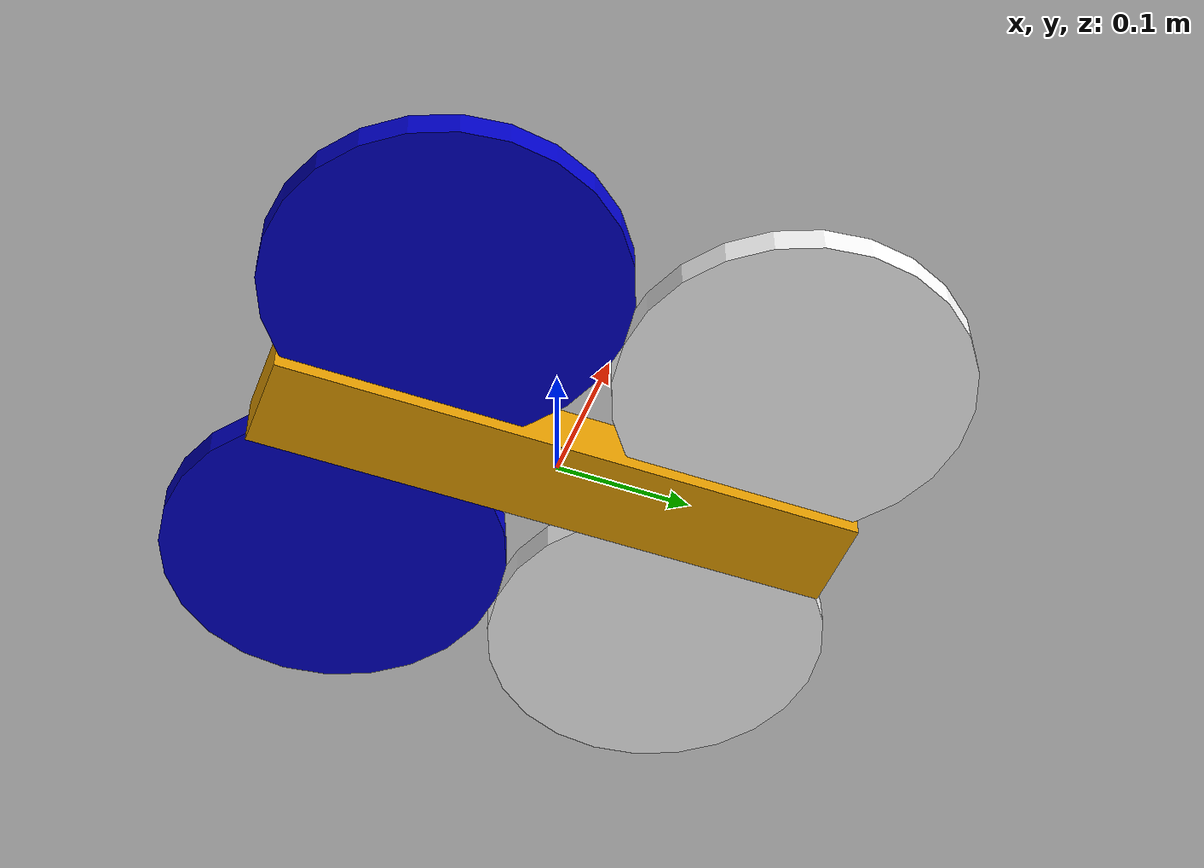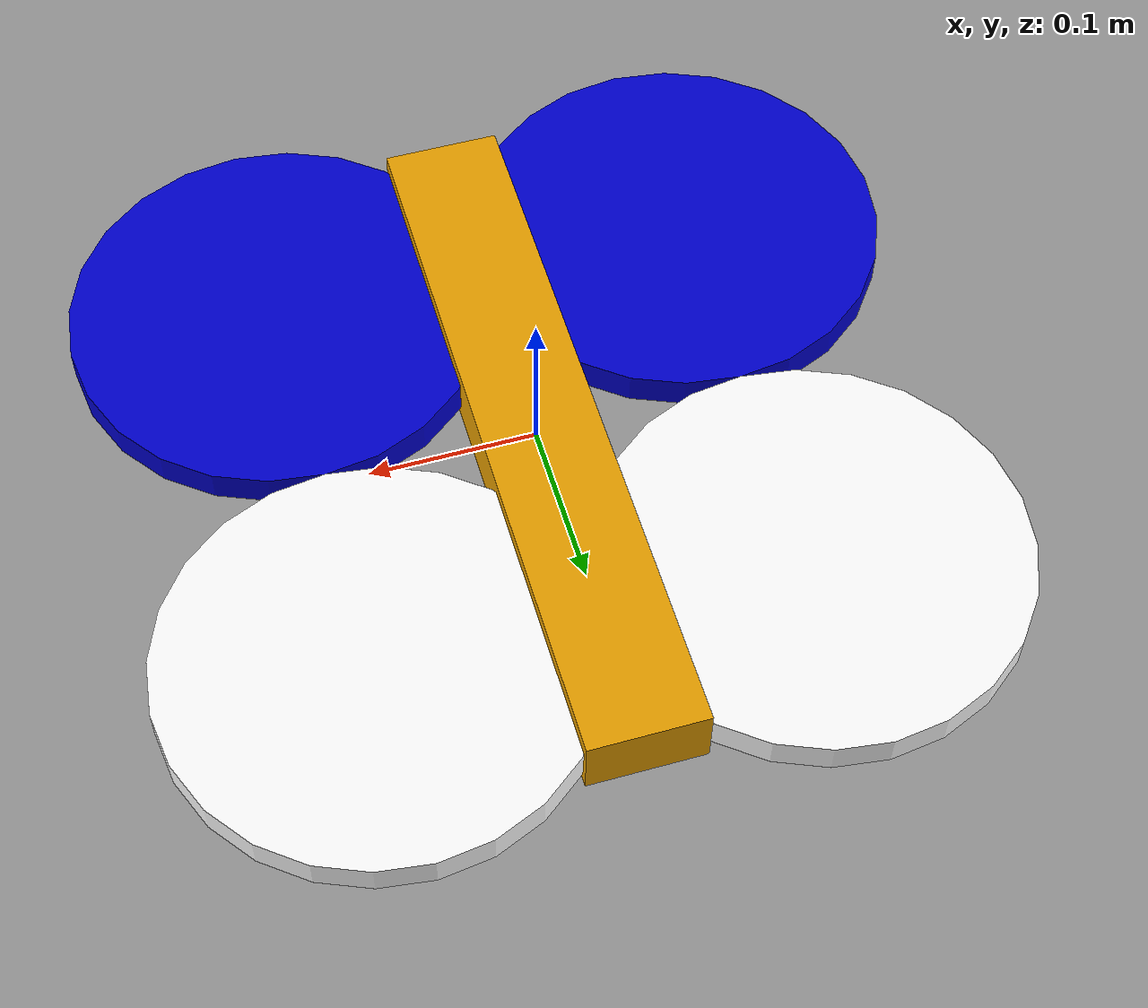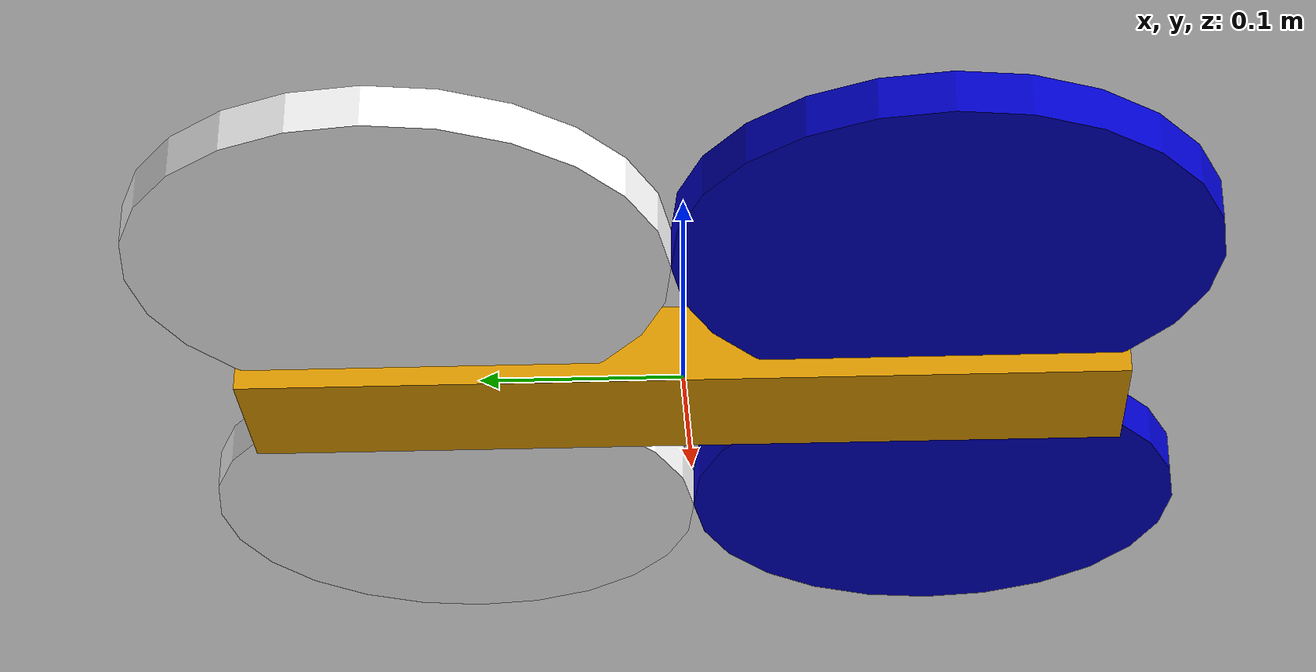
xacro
<?xml version="1.0"?>
<robot xmlns:xacro="http://www.ros.org/wiki/xacro" name="ardrone">
  <xacro:property name="base_width" value="0.43"/>
  <xacro:property name="base_length" value="0.07"/>
  <xacro:property name="base_height" value="0.04"/>
  <xacro:property name="hull_radius" value="0.125"/>
  <xacro:property name="hull_height" value="0.02"/>

  <xacro:macro name="hull_circle" params="name x y material rgba">
    <link name="${name}">
      <visual>
	<geometry>
	  <cylinder radius="${hull_radius}" length="${hull_height}"/>
	</geometry>
	<material name="${material}">
	  <color rgba="${rgba}"/>
	</material>
      </visual>
    </link>

    <joint name="base_to_${name}" type="fixed">
      <parent link="body"/>
      <child link="${name}"/>
      <origin xyz="${hull_radius*x} ${hull_radius*y} 0"/>
    </joint>
  </xacro:macro>

  <link name="body">
    <visual>
      <geometry>
	<box size="${base_length} ${base_width} ${base_height}"/>
      </geometry>
    </visual>
  </link>
  <xacro:hull_circle name="front_left" x="-1" y="1" material="white" rgba="1 1 1 1"/>
  <xacro:hull_circle name="front_right" x="1" y="1" material="white" rgba="1 1 1 1"/>
  <xacro:hull_circle name="aft_left" x="-1" y="-1" material="blue" rgba="0 0 0.8 1"/>
  <xacro:hull_circle name="aft_right" x="1" y="-1" material="blue" rgba="0 0 0.8 1"/>
</robot>
